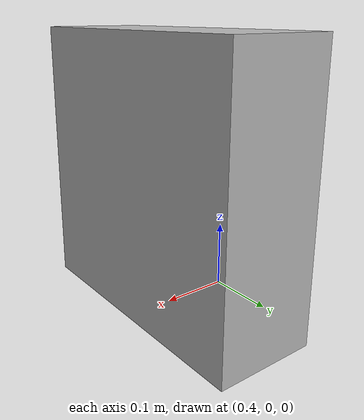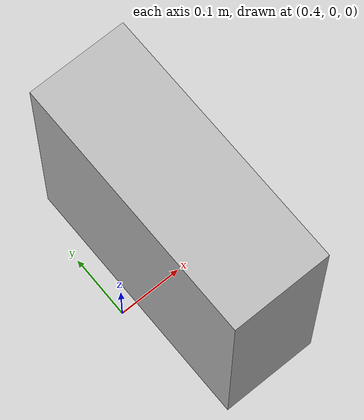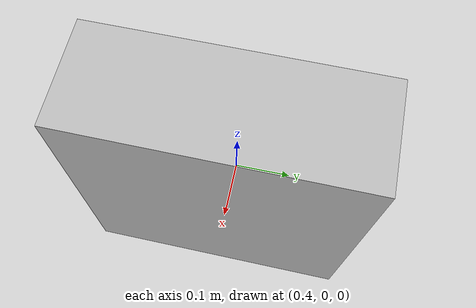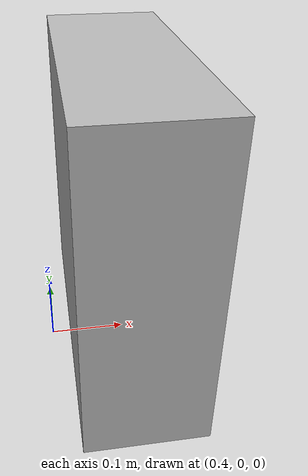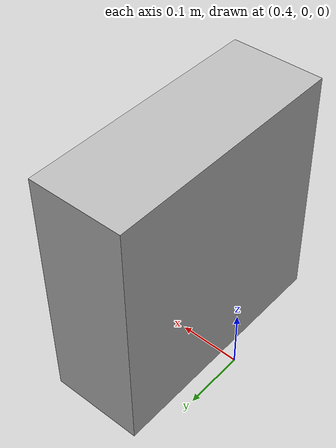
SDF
<sdf version="1.6">
    <world name="default">

        <!-- Define the Table -->
        <model name="table">
            <pose>0.5 0 0.2 0 0 0</pose> <!-- x y z roll pitch yaw -->
            <static>true</static> <!-- The table is a static object -->
            <link name="link">
                <collision name="collision">
                    <geometry>
                        <box>
                            <size>0.15 0.4 0.4</size> <!-- Size of the table -->
                        </box>
                    </geometry>
                </collision>
                <visual name="visual">
                    <geometry>
                        <box>
                            <size>0.15 0.4 0.4</size> <!-- Size of the table -->
                        </box>
                    </geometry>
                </visual>
            </link>
        </model>

    </world>
</sdf>
